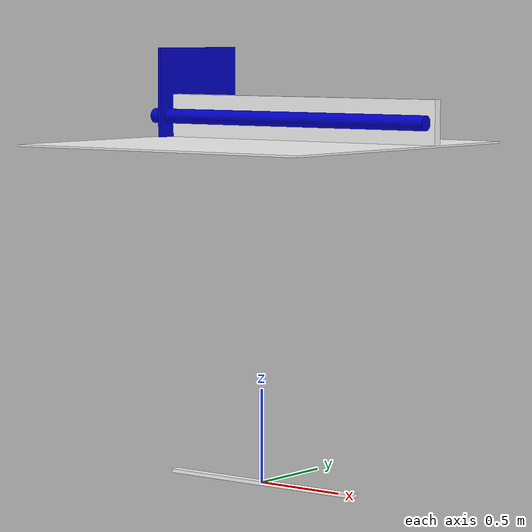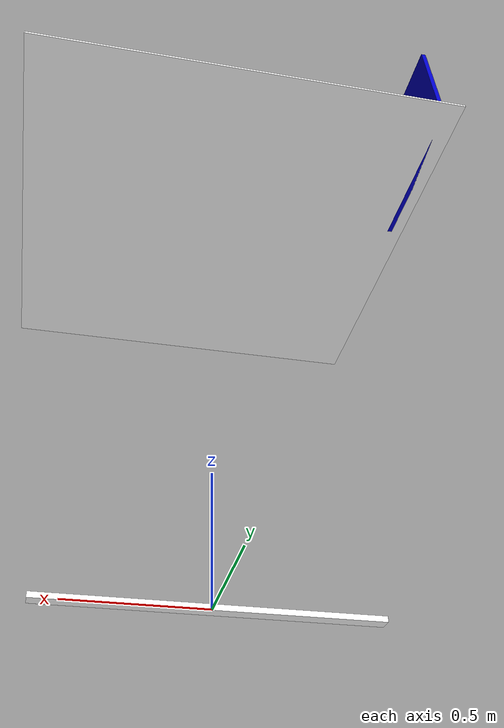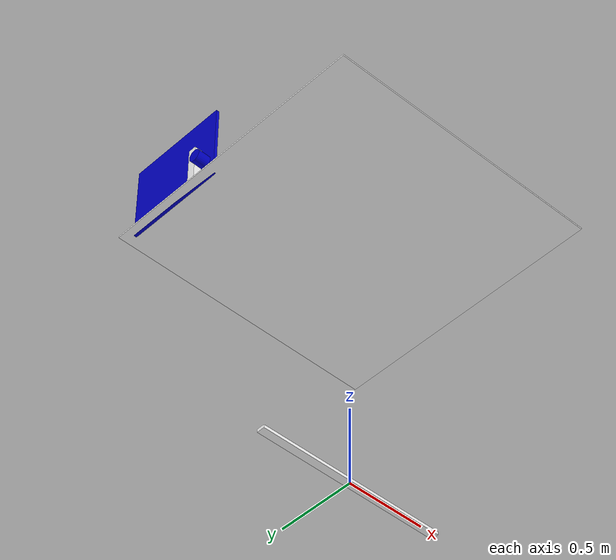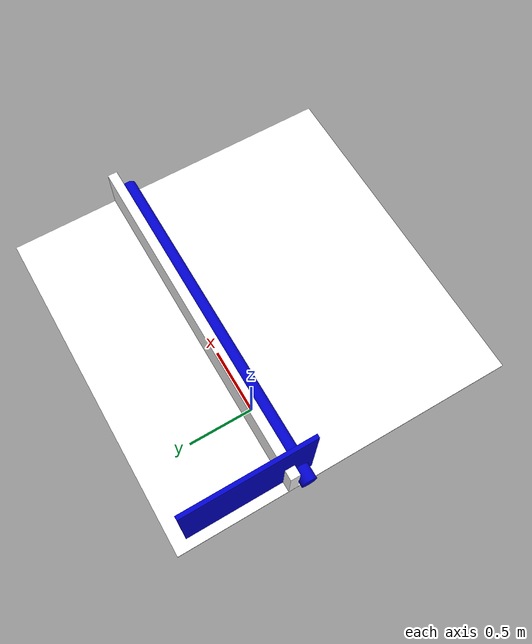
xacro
<?xml version="1.0"?>
<robot name="roscontrol" xmlns:xacro="http://ros.org/wiki/xacro">

    <xacro:property name="wheeldiam" value="0.20" />
    <xacro:property name="bodylen" value="0.6" />
    <xacro:property name="pi" value="3.1415" />
    <xacro:property name="baselen" value="0.4" />

    <material name="blue">
     <color rgba="0 0 0.8 1"/>
    </material>

    <material name="white">
        <color rgba="1 1 1 1"/>
    </material>

    <material name="black">
      <color rgba="0 0 0 1"/>
    </material>

    <xacro:macro name="default_inertial" params="mass">
      <inertial>
       <mass value="${mass}" />
       <inertia ixx="1.0" ixy="0.0" ixz="0.0" iyy="1.0" iyz="0.0" izz="1.0" />
      </inertial>
    </xacro:macro>

  <link name="base_link">

    <origin rpy="0 0 0" xyz="0  0 ${bodylen}"/>
    <visual>
      <geometry>
        <box size="${bodylen*2} 0.05 0.02"/>
      </geometry>
      <material name="white"/>
    </visual>
    <origin rpy="0 0 0" xyz="0  0 ${bodylen}"/>
    <collision>
      <geometry>
        <box size="${bodylen*2} 0.05 0.02"/>
      </geometry>
    </collision>
    <mu1 value="0.8"/>
    <mu2 value="0.8"/>
    <kp value="1000.0" />
    <kd value="1.0" />
    <material>Gazebo/Grey</material>
    <xacro:default_inertial mass="1"/>
  </link>

  <link name="launcher">
    <origin rpy="0 0 0" xyz="0 0 0"/>
    <visual>
      <geometry>
        <box size="${bodylen*3} ${bodylen*3} 0.01"/>
      </geometry>
      <material name="white"/>
    </visual>
    <collision>
     <origin rpy="0 0 0" xyz="0 0 0"/>
     <geometry>
        <box size="${bodylen*3} ${bodylen*3} 0.01"/>
      </geometry>
    </collision>
    <mu1 value="0.3"/>
    <mu2 value="0.4"/>
    <kp value="1000.0" />
    <kd value="1.0" />
    <material>Gazebo/Grey</material>
    <xacro:default_inertial mass="15"/>
  </link>

    <joint name="launcher_joint" type="revolute">
      <axis xyz="0 0 0"/>
      <limit effort="1000.0" lower="0.0" upper="1" velocity="5"/>
      <origin rpy="0 0 0" xyz="0 0 ${bodylen*3}"/>
      <!-- origin rpy="0 0 0" xyz="0 0 0"/-->
 <!--origin rpy="0 0 0" xyz="0 ${bodylen*1.5 +0.025} 0"/-->
      <parent link="base_link"/>
      <child link="launcher"/>
      <limit effort="30" velocity="1.0"/>
      <dynamics damping="0.0" friction="0.0"/>
    </joint>

    <transmission name="launcher_trans">
      <type>transmission_interface/SimpleTransmission</type>
      <actuator name="launcher_motor">
        <mechanicalReduction>1</mechanicalReduction>
      </actuator>
      <joint name="launcher_joint">
        <hardwareInterface>PositionJointInterface</hardwareInterface>
      </joint>
    </transmission>

   <link name="stopper">
    <visual>
      <geometry>
        <box size="${bodylen*3} 0.05 0.24"/>
      </geometry>
      <material name="white"/>
    </visual>
    <collision>
      <geometry>
        <box size="${bodylen*3} 0.05 0.24"/>
      </geometry>
    </collision>
    <mu1 value="0.3"/>
    <mu2 value="0.4"/>
    <kp value="1000.0" />
    <kd value="1.0" />
    <material>Gazebo/Grey</material>
    <xacro:default_inertial mass="10"/>
   </link>

   <joint name="stopper_joint" type="prismatic">
      <axis xyz="0 0 0"/>
      <limit effort="1000.0" lower="-5" upper="5" velocity="5"/>
      <origin rpy="0 0 0" xyz="0 ${bodylen*0.5} 0.12"/>
      <parent link="launcher"/>
      <child link="stopper"/>
      <limit effort="30" velocity="1.0"/>
      <dynamics damping="0.0" friction="0.0"/>
   </joint>

   <transmission name="stopper_joint_trans">
    <type>transmission_interface/SimpleTransmission</type>
    <actuator name="stopper_joint_motor">
      <mechanicalReduction>1</mechanicalReduction>
    </actuator>
    <joint name="stopper_joint">
      <hardwareInterface>PositionJointInterface</hardwareInterface>
    </joint>
  </transmission>

   <link name="picker">
     <visual>
       <geometry>
        <cylinder radius="${wheeldiam/5}" length="${bodylen*3}"/>
       </geometry>
       <origin xyz="-0.03 -0.06 0" rpy="0  ${pi/2} 0"/>
       <material name="blue"/>
     </visual>
     <collision>
      <geometry>
        <cylinder radius="${wheeldiam/5}" length="${bodylen*3}"/>
      </geometry>
      <origin xyz="0 -0.025 0.4" rpy="0 ${pi/2} 0"/>
     </collision>
      <xacro:default_inertial mass="1"/>
   </link>

   <joint name="picker_joint" type="prismatic">
      <parent link="stopper"/>
      <child link="picker"/>
      <limit effort="1000.0" lower="-5" upper="5" velocity="0.5"/>
      <!--origin xyz="0 0 0" /-->
      <origin rpy="0 0 0" xyz="0 0 0"/>
      <limit effort="30" velocity="0.2"/>
      <dynamics damping="0.0" friction="0.0"/>
      <!--origin xyz="0 0 0" /-->
   </joint>

   <transmission name="picker_joint_trans">
    <type>transmission_interface/SimpleTransmission</type>
    <actuator name="picker_joint_motor">
      <mechanicalReduction>1</mechanicalReduction>
    </actuator>
    <joint name="picker_joint">
      <hardwareInterface>PositionJointInterface</hardwareInterface>
    </joint>
   </transmission>

  <link name="pusher">
     <visual>
       <geometry>
        <box size="${bodylen*1.1} 0.02 0.5"/>
        <!--cylinder radius="${wheeldiam/10}" length="${bodylen*1}"/-->
       </geometry>
       <origin xyz="0 0.2 0.125" rpy="0 0 ${pi/2}"/>
       <material name="blue"/>
     </visual>
     <collision>
      <geometry>
        <box size="${bodylen*1.1} 0.02 0.5 "/>
        <!--cylinder radius="${wheeldiam/10}" length="${bodylen*1}"/-->
      </geometry>
      <origin xyz="0 0.2 0.125" rpy=" 0 0 ${pi/2}"/>
     </collision>
      <xacro:default_inertial mass="2"/>
   </link>

   <joint name="pusher_joint" type="revolute">
      <parent link="picker"/>
      <child link="pusher"/>
      <limit effort="1000.0" lower="-5" upper="5" velocity="0.5"/>
      <!--origin xyz="0 0 0" /-->
      <origin rpy="0 0 0" xyz="-${bodylen*1.4} 0 0"/>
      <limit effort="30" velocity="0.2"/>
      <dynamics damping="0.0" friction="0.0"/>
      <!--origin xyz="0 0 0" /-->
   </joint>

   <transmission name="pusher_joint_trans">
    <type>transmission_interface/SimpleTransmission</type>
    <actuator name="pusher_joint_motor">
      <mechanicalReduction>1</mechanicalReduction>
    </actuator>
    <joint name="pusher_joint">
      <hardwareInterface>PositionJointInterface</hardwareInterface>
    </joint>
  </transmission>

 <!-- Gazebo plugin for ROS Control -->
  <gazebo>
    <plugin name="gazebo_ros_control" filename="libgazebo_ros_control.so">
      <robotNamespace>/</robotNamespace>
    </plugin>
  </gazebo>

</robot>
